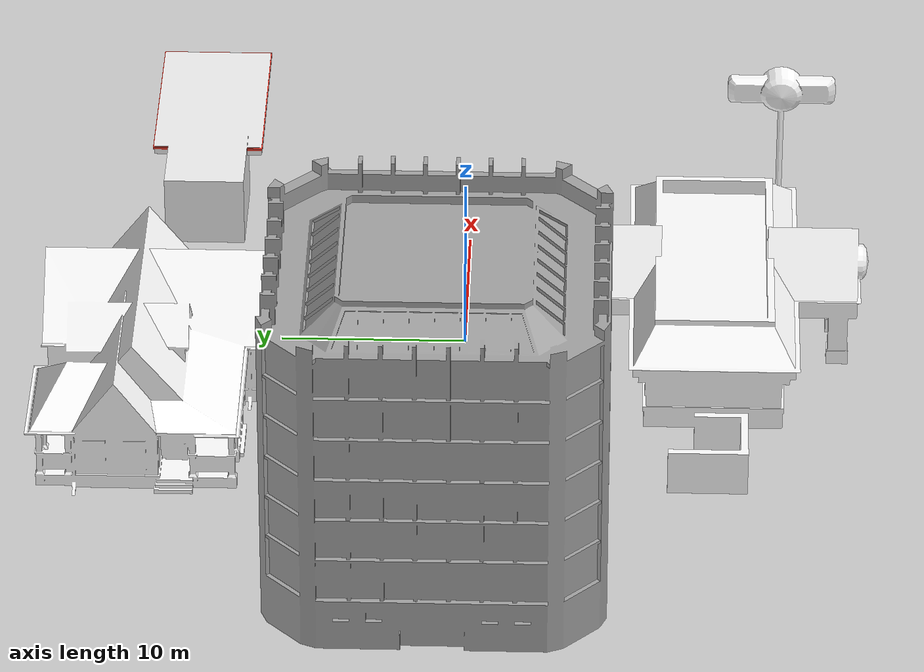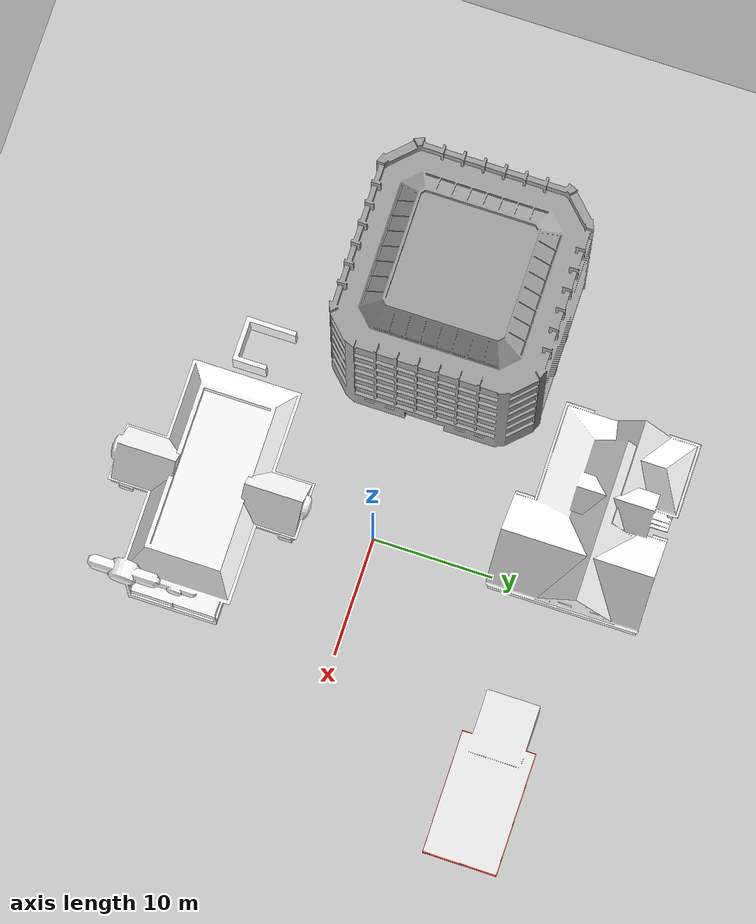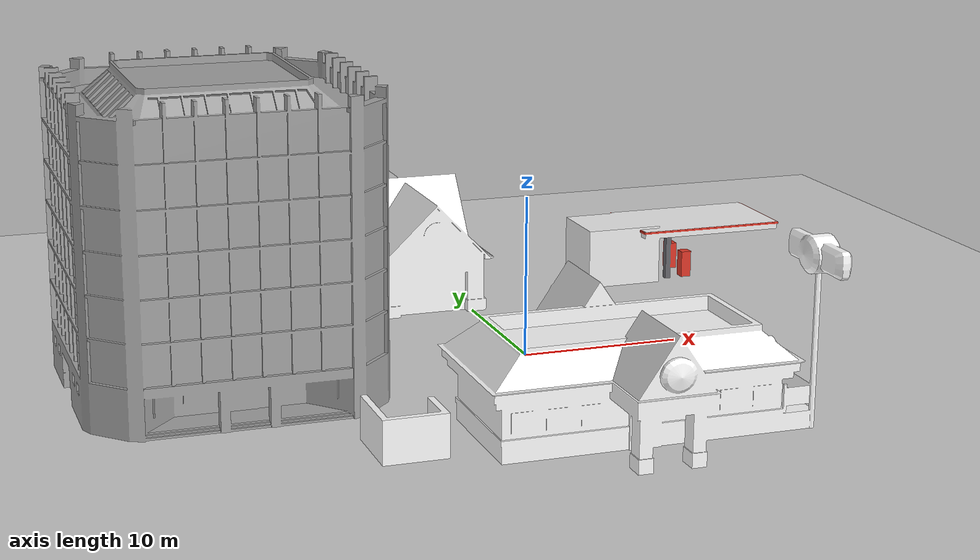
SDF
<sdf version="1.7">
 <world name="default">
  <light name="sun" type="directional">
   <pose>0 0 10 0 -0 0</pose>
   <diffuse>0.8 0.8 0.8 1</diffuse>
   <specular>0.2 0.2 0.2 1</specular>
   <attenuation>
    <range>1000</range>
    <constant>0.9</constant>
    <linear>0.01</linear>
    <quadratic>0.001</quadratic>
   </attenuation>
   <direction>-0.5 0.1 -0.9</direction>
   <spot><inner_angle>0</inner_angle><outer_angle>0</outer_angle><falloff>0</falloff></spot>
  </light>
  <model name="ground_plane">
   <static>1</static>
   <link name="link">
    <collision name="collision">
     <geometry><plane><normal>0 0 1</normal><size>100 100</size></plane></geometry>
     <surface>
      <contact><collide_bitmask>65535</collide_bitmask></contact>
      <friction><ode><mu>100</mu><mu2>50</mu2></ode></friction>
     </surface>
    </collision>
    <visual name="visual">
     <cast_shadows>0</cast_shadows>
     <geometry><plane><normal>0 0 1</normal><size>100 100</size></plane></geometry>
     <material>
      <script><uri>file://media/materials/scripts/gazebo.material</uri><name>Gazebo/Grey</name></script>
     </material>
    </visual>
   </link>
  </model>
  <gravity>0 0 -9.8</gravity>
  <magnetic_field>6e-06 2.3e-05 -4.2e-05</magnetic_field>
  <atmosphere type="adiabatic"/>
  <physics type="ode">
   <max_step_size>0.001</max_step_size>
   <real_time_factor>1</real_time_factor>
   <real_time_update_rate>1000</real_time_update_rate>
  </physics>
  <scene><ambient>0.4 0.4 0.4 1</ambient><background>0.7 0.7 0.7 1</background><shadows>1</shadows></scene>
  <spherical_coordinates>
   <surface_model>EARTH_WGS84</surface_model>
   <latitude_deg>0</latitude_deg>
   <longitude_deg>0</longitude_deg>
   <elevation>0</elevation>
   <heading_deg>0</heading_deg>
  </spherical_coordinates>
  <model name="Fast Food">
   <static>1</static>
   <link name="link">
    <pose>0 0 3.15931 0 -0 0</pose>
    <collision name="collision">
     <geometry><mesh><scale>3 3 2</scale><uri>model://fast_food/meshes/fast_food.dae</uri></mesh></geometry>
    </collision>
    <visual name="visual">
     <geometry><mesh><scale>3 3 2</scale><uri>model://fast_food/meshes/fast_food.dae</uri></mesh></geometry>
     <material>
      <script>
       <uri>model://fast_food/materials/scripts</uri>
       <uri>model://fast_food/materials/textures</uri>
       <name>FastFood/Diffuse</name>
      </script>
      <shader type="normal_map_tangent_space"><normal_map>FastFood_Normal.png</normal_map></shader>
     </material>
    </visual>
   </link>
   <pose>0.402062 -13.4019 0 0 -0 0</pose>
  </model>
  <model name="Gas Station">
   <static>1</static>
   <link name="link">
    <collision name="collision">
     <geometry><mesh><uri>model://gas_station/meshes/gas_station.dae</uri></mesh></geometry>
    </collision>
    <visual name="visual">
     <geometry><mesh><uri>model://gas_station/meshes/gas_station.dae</uri></mesh></geometry>
     <material>
      <script>
       <uri>model://gas_station/materials/scripts</uri>
       <uri>model://gas_station/materials/textures</uri>
       <name>GasStation/Diffuse</name>
      </script>
      <shader type="normal_map_tangent_space"><normal_map>GasStation_Normal.png</normal_map></shader>
     </material>
    </visual>
   </link>
   <pose>15.8267 14.7789 0 0 -0 0</pose>
  </model>
  <model name="House 1">
   <static>1</static>
   <link name="link">
    <collision name="collision">
     <geometry><mesh><uri>model://house_1/meshes/house_1.dae</uri><scale>1.5 1.5 1.5</scale></mesh></geometry>
    </collision>
    <visual name="visual">
     <geometry><mesh><uri>model://house_1/meshes/house_1.dae</uri><scale>1.5 1.5 1.5</scale></mesh></geometry>
     <material>
      <script>
       <uri>model://house_1/materials/scripts</uri>
       <uri>model://house_1/materials/textures</uri>
       <name>House_1/Diffuse</name>
      </script>
      <shader type="normal_map_tangent_space"><normal_map>House_1_Normal.png</normal_map></shader>
     </material>
    </visual>
   </link>
   <pose>-6.42011 16.6097 0 0 -0 0</pose>
  </model>
  <model name="Office Building">
   <static>1</static>
   <link name="link">
    <collision name="collision">
     <geometry><mesh><uri>model://office_building/meshes/office_building.dae</uri></mesh></geometry>
    </collision>
    <visual name="visual">
     <geometry><mesh><uri>model://office_building/meshes/office_building.dae</uri></mesh></geometry>
    </visual>
   </link>
   <pose>-19.0688 0.93259 0 0 -0 0</pose>
  </model>
 </world>
</sdf>
